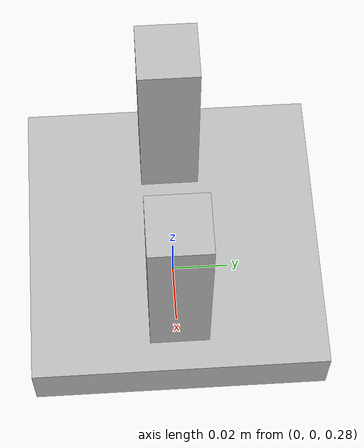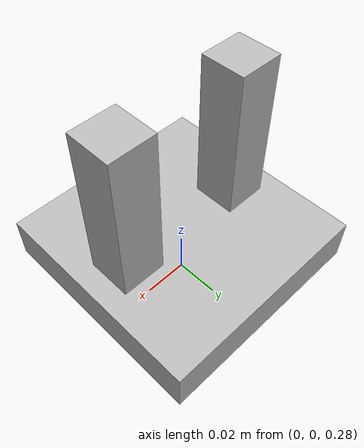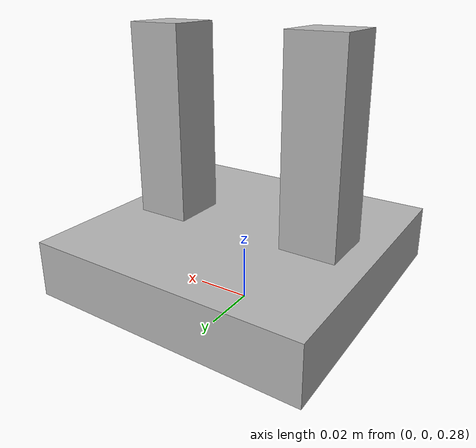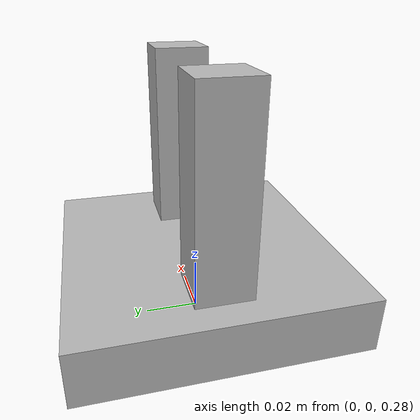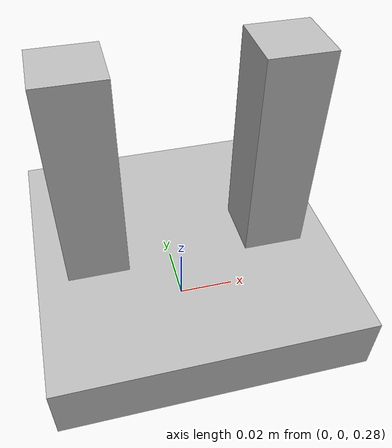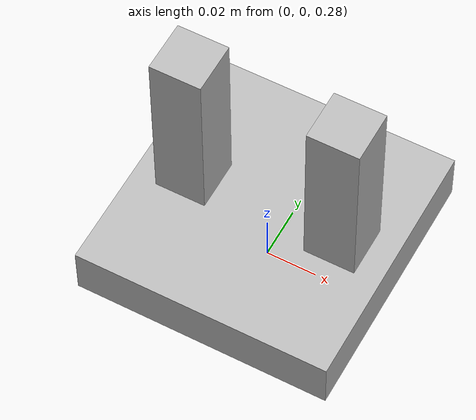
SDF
<?xml version="1.0" ?>
<sdf version="1.10">
    <world name="car_world">
        <include>
            <uri>model://gripper</uri>
            <pose>0 0 0.3 0 0 0</pose>
        </include>
    </world>
</sdf>

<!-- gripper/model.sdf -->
<sdf version="1.6">
  <model name="simple_gripper">
    <static>false</static>

    <!-- Base del gripper -->
    <link name="base_link">
      <pose>0 0 0 0 0 0</pose>
      <collision name="base_collision">
        <geometry>
          <box>
            <size>0.1 0.1 0.02</size>
          </box>
        </geometry>
      </collision>
      <visual name="base_visual">
        <geometry>
          <box>
            <size>0.1 0.1 0.02</size>
          </box>
        </geometry>
      </visual>
    </link>

    <!-- Dedo izquierdo -->
    <link name="left_finger">
      <pose>-0.03 0 0.04 0 0 0</pose>
      <collision name="left_collision">
        <geometry>
          <box>
            <size>0.02 0.02 0.08</size>
          </box>
        </geometry>
      </collision>
      <visual name="left_visual">
        <geometry>
          <box>
            <size>0.02 0.02 0.08</size>
          </box>
        </geometry>
      </visual>
    </link>

    <!-- Dedo derecho -->
    <link name="right_finger">
      <pose>0.03 0 0.04 0 0 0</pose>
      <collision name="right_collision">
        <geometry>
          <box>
            <size>0.02 0.02 0.08</size>
          </box>
        </geometry>
      </collision>
      <visual name="right_visual">
        <geometry>
          <box>
            <size>0.02 0.02 0.08</size>
          </box>
        </geometry>
      </visual>
    </link>

    <!-- Articulación dedo izquierdo -->
    <joint name="left_joint" type="prismatic">
      <parent>base_link</parent>
      <child>left_finger</child>
      <axis>
        <xyz>1 0 0</xyz>
        <limit>
          <lower>-0.02</lower>
          <upper>0.0</upper>
        </limit>
      </axis>
    </joint>

    <!-- Articulación dedo derecho -->
    <joint name="right_joint" type="prismatic">
      <parent>base_link</parent>
      <child>right_finger</child>
      <axis>
        <xyz>-1 0 0</xyz>
        <limit>
          <lower>-0.02</lower>
          <upper>0.0</upper>
        </limit>
      </axis>
    </joint>

  </model>
</sdf>
